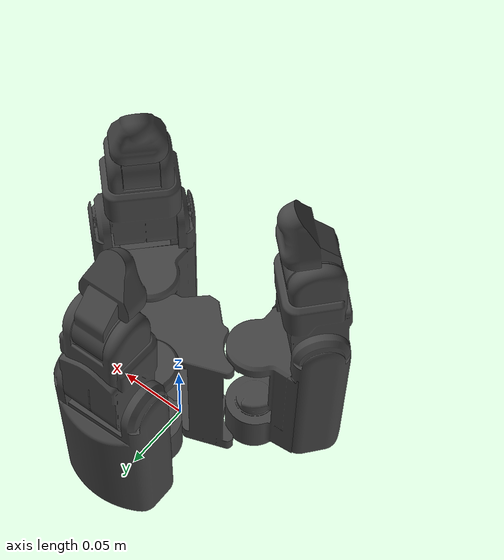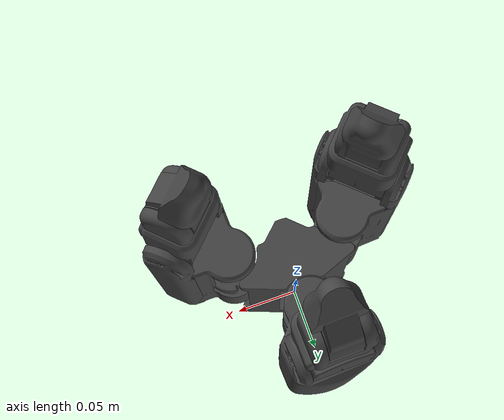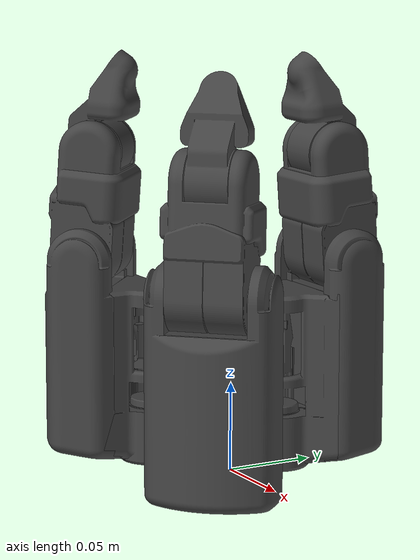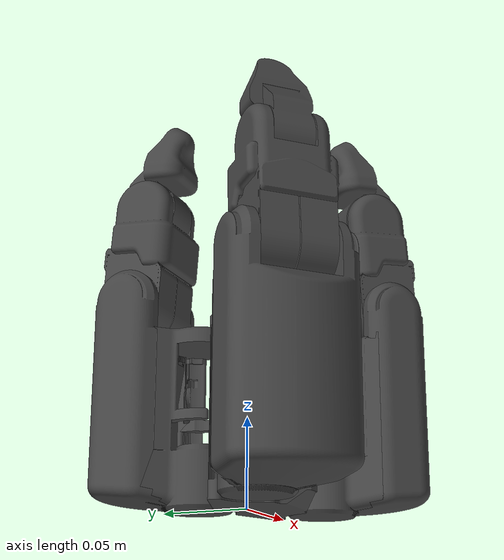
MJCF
<mujoco model="hand_H_v2">
    <include file="shared_options.xml"></include>
    <asset>
        <include file="shared_asset.xml"></include>
    </asset>
    <worldbody>
        <body name="H0_wrist_attach" pos="0 0 0">
            <inertial pos="0 0 0" mass="0" diaginertia="0 0 0" />
            <body name="H0_base_link" pos="0 0 -0.0005">
                <inertial pos="9.45256e-05 -0.00865108 0.0485" quat="0.707107 0 0 0.707107" mass="0.275316" diaginertia="0.0003223 0.000255715 0.000146273" />
                <geom type="mesh" rgba="0.267 0.267 0.267 1" mesh="palm_link_col" friction="1 0.05 0.01" condim="4" margin="0.0005" contype="1" conaffinity="1"/>
                <body name="H0_insert_F0" pos="-0.045 -0.025981 0" quat="0.382681 0 0 0.923881">
                    <inertial pos="-0.045 -0.025981 0" quat="0.382681 0 0 0.923881" mass="0" diaginertia="0 0 0" />
                    <body name="H0_F0_palm_link" pos="0 0 0">
                        <inertial pos="-0.00681802 -0.0094702 0.067588" quat="0.992601 0.0892342 0.0144943 -0.0810556" mass="0.095" diaginertia="2.7996e-05 2.73461e-05 9.27404e-06" />
                        <body name="H0_F0_base_link" pos="0 0 0.00016528" quat="0.999937 0 0 0.0112008">
                            <inertial pos="3.29175e-05 0.0257198 0.0640745" quat="0.999447 -0.032655 0.000557149 0.0061748" mass="0.482887" diaginertia="0.000750982 0.000728478 0.00032531" />
                            <joint name="H0_F0J0" pos="0 0 0" axis="0 0 1" limited="true" range="-0.785398 0.785398" damping="0.5" armature="0.005" margin="0.01" frictionloss="0.001"/>
                            <geom type="mesh" rgba="0.267 0.267 0.267 1" mesh="finger_base_front_link" margin="0" contype="1" conaffinity="1"/>
                            <geom type="mesh" rgba="0.267 0.267 0.267 1" mesh="finger_base_back_link" contype="1" conaffinity="1" pos="0 0 0" quat="0.999937 0 0 0.0112008"/>
                            <body name="H0_F0_link_1" pos="0 0.035 0.11683" quat="0.999375 0.0353401 0 0">
                                <inertial pos="0.000425187 -0.000367262 0.0278443" quat="0.731527 -0.00311774 -0.00402921 0.681793" mass="0.152927" diaginertia="0.000123742 0.000112273 4.66523e-05" />
                                <joint name="H0_F0J1" pos="0 0 0" axis="1 0 0" limited="true" range="-1.39626 1.0472" damping="0.5" armature="0.005" margin="0.01" frictionloss="0.001"/>
                                <geom type="mesh" rgba="0.267 0.267 0.267 1" mesh="finger_prox_link_col" friction="1 0.05 0.01" condim="4" margin="0.0005" contype="1" conaffinity="1"/>
                                <body name="H0_F0_link_2" pos="0 0 0.06" quat="0.999994 -0.00343244 0 0">
                                    <inertial pos="0.000301517 -0.00291034 0.0141289" quat="0.723859 0.0821098 -0.0893603 0.679192" mass="0.0438455" diaginertia="1.61269e-05 1.59969e-05 5.28892e-06" />
                                    <joint name="H0_F0J2" pos="0 0 0" axis="1 0 0" limited="true" range="-1.0472 1.39626" damping="0.5" armature="0.005" margin="0.01" frictionloss="0.001"/>
                                    <geom type="mesh" rgba="0.267 0.267 0.267 1" mesh="finger_dist_link" friction="1 0.05 0.01" condim="4" margin="0.0005" contype="1" conaffinity="1" />
                                    <body name="H0_F0_tip" pos="0 0 0">
                                        <inertial pos="0 0 0" mass="0" diaginertia="0 0 0" />
                                        <body name="H0_F0_optoforce" pos="0 -0.006 0.046" quat="0.984727 -0.174108 0 0">
                                            <inertial pos="0 -0.006 0.046" quat="0.984727 -0.174108 0 0" mass="0" diaginertia="0 0 0" />
                                        </body>
                                    </body>
                                </body>
                            </body>
                        </body>
                    </body>
                </body>
                <body name="H0_insert_F1" pos="0 0.029019 0">
                    <inertial pos="0 0.029019 0" mass="0" diaginertia="0 0 0" />
                    <body name="H0_F1_palm_link" pos="0 0 0">
                        <inertial pos="-0.00681802 -0.0094702 0.067588" quat="0.992601 0.0892342 0.0144943 -0.0810556" mass="0.095" diaginertia="2.7996e-05 2.73461e-05 9.27404e-06" />
                        <body name="H0_F1_base_link" pos="0 0 0.00016528" quat="0.999937 0 0 0.0112008">
                            <inertial pos="3.29175e-05 0.0257198 0.0640745" quat="0.999447 -0.032655 0.000557149 0.0061748" mass="0.482887" diaginertia="0.000750982 0.000728478 0.00032531" />
                            <joint name="H0_F1J0" pos="0 0 0" axis="0 0 1" limited="true" range="-0.785398 0.785398" damping="0.5" armature="0.005" margin="0.01" frictionloss="0.001"/>
                            <geom type="mesh" rgba="0.267 0.267 0.267 1" mesh="finger_base_front_link" margin="0" contype="1" conaffinity="1"/>
                            <geom type="mesh" rgba="0.267 0.267 0.267 1" mesh="finger_base_back_link" contype="1" conaffinity="1" pos="0 0 0" quat="0.999937 0 0 0.0112008"/>
                            <body name="H0_F1_link_1" pos="0 0.035 0.11683" quat="0.999375 0.0353401 0 0">
                                <inertial pos="0.000425187 -0.000367262 0.0278443" quat="0.731527 -0.00311774 -0.00402921 0.681793" mass="0.152927" diaginertia="0.000123742 0.000112273 4.66523e-05" />
                                <joint name="H0_F1J1" pos="0 0 0" axis="1 0 0" limited="true" range="-1.39626 1.0472" damping="0.5" armature="0.005" margin="0.01" frictionloss="0.001"/>
                                <geom type="mesh" rgba="0.267 0.267 0.267 1" mesh="finger_prox_link_col" friction="1 0.05 0.01" condim="4" margin="0.0005" contype="1" conaffinity="1"/>
                                <body name="H0_F1_link_2" pos="0 0 0.06" quat="0.999994 -0.00343244 0 0">
                                    <inertial pos="0.000301517 -0.00291034 0.0141289" quat="0.723859 0.0821098 -0.0893603 0.679192" mass="0.0438455" diaginertia="1.61269e-05 1.59969e-05 5.28892e-06" />
                                    <joint name="H0_F1J2" pos="0 0 0" axis="1 0 0" limited="true" range="-1.0472 1.39626" damping="0.5" armature="0.005" margin="0.01" frictionloss="0.001"/>
                                    <geom type="mesh" rgba="0.267 0.267 0.267 1" mesh="finger_dist_link" friction="1 0.05 0.01" condim="4" margin="0.0005" contype="1" conaffinity="1"/>
                                    <body name="H0_F1_tip" pos="0 0 0">
                                        <inertial pos="0 0 0" mass="0" diaginertia="0 0 0" />
                                        <body name="H0_F1_optoforce" pos="0 -0.006 0.046" quat="0.984727 -0.174108 0 0">
                                            <inertial pos="0 -0.006 0.046" quat="0.984727 -0.174108 0 0" mass="0" diaginertia="0 0 0" />
                                        </body>
                                    </body>
                                </body>
                            </body>
                        </body>
                    </body>
                </body>
                <body name="H0_insert_F2" pos="0.045 -0.025981 0" quat="0.382681 0 0 -0.923881">
                    <inertial pos="0.045 -0.025981 0" quat="0.382681 0 0 -0.923881" mass="0" diaginertia="0 0 0" />
                    <body name="H0_F2_palm_link" pos="0 0 0">
                        <inertial pos="-0.00681802 -0.0094702 0.067588" quat="0.992601 0.0892342 0.0144943 -0.0810556" mass="0.095" diaginertia="2.7996e-05 2.73461e-05 9.27404e-06" />
                        <body name="H0_F2_base_link" pos="0 0 0.00016528" quat="0.999937 0 0 0.0112008">
                            <inertial pos="3.29175e-05 0.0257198 0.0640745" quat="0.999447 -0.032655 0.000557149 0.0061748" mass="0.482887" diaginertia="0.000750982 0.000728478 0.00032531" />
                            <joint name="H0_F2J0" pos="0 0 0" axis="0 0 1" limited="true" range="-0.785398 0.785398" damping="0.5" armature="0.005" margin="0.01" frictionloss="0.001"/>
                            <geom type="mesh" rgba="0.267 0.267 0.267 1" mesh="finger_base_front_link" margin="0" contype="1" conaffinity="1"/>
                            <geom type="mesh" rgba="0.267 0.267 0.267 1" mesh="finger_base_back_link" contype="1" conaffinity="1" pos="0 0 0" quat="0.999937 0 0 0.0112008"/>
                            <body name="H0_F2_link_1" pos="0 0.035 0.11683" quat="0.999375 0.0353401 0 0">
                                <inertial pos="0.000425187 -0.000367262 0.0278443" quat="0.731527 -0.00311774 -0.00402921 0.681793" mass="0.152927" diaginertia="0.000123742 0.000112273 4.66523e-05" />
                                <joint name="H0_F2J1" pos="0 0 0" axis="1 0 0" limited="true" range="-1.39626 1.0472" damping="0.5" armature="0.005" margin="0.01" frictionloss="0.001"/>
                                <geom type="mesh" rgba="0.267 0.267 0.267 1" mesh="finger_prox_link_col" friction="1 0.05 0.01" condim="4" margin="0.0005" contype="1" conaffinity="1"/>
                                <body name="H0_F2_link_2" pos="0 0 0.06" quat="0.999994 -0.00343244 0 0">
                                    <inertial pos="0.000301517 -0.00291034 0.0141289" quat="0.723859 0.0821098 -0.0893603 0.679192" mass="0.0438455" diaginertia="1.61269e-05 1.59969e-05 5.28892e-06" />
                                    <joint name="H0_F2J2" pos="0 0 0" axis="1 0 0" limited="true" range="-1.0472 1.39626" damping="0.5" armature="0.005" margin="0.01" frictionloss="0.001"/>
                                    <geom type="mesh" rgba="0.267 0.267 0.267 1" mesh="finger_dist_link" friction="1 0.05 0.01" condim="4" margin="0.0005" contype="1" conaffinity="1"/>
                                    <body name="H0_F2_tip" pos="0 0 0">
                                        <inertial pos="0 0 0" mass="0" diaginertia="0 0 0" />
                                        <body name="H0_F2_optoforce" pos="0 -0.006 0.046" quat="0.984727 -0.174108 0 0">
                                            <inertial pos="0 -0.006 0.046" quat="0.984727 -0.174108 0 0" mass="0" diaginertia="0 0 0" />
                                        </body>
                                    </body>
                                </body>
                            </body>
                        </body>
                    </body>
                </body>
                <body name="fh_manipulator" pos="0 0 0.1">
                    <inertial pos="0 0 0.1" mass="0" diaginertia="0 0 0" />
                </body>
            </body>
        </body>
    </worldbody>
    <keyframe>
        <key time="30" qpos="0 0 0 0 0 0 0 0 0" />
    </keyframe>
</mujoco>

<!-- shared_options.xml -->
<mujoco>
    <compiler angle="radian" inertiafromgeom="true" coordinate="local" meshdir=""></compiler>

    <visual>
        <map fogstart="3" fogend="5" force="0.1" znear="0.5"/>
        <quality shadowsize="2048" offsamples="8"/>
        <global offwidth="800" offheight="800"/>
    </visual>

    <option cone="elliptic" impratio="300" timestep="0.002"/>
    <size njmax="500" nconmax="200" />
</mujoco>

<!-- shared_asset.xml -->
<mujoco>
    <texture type="skybox" builtin="gradient" width="128" height="128" rgb1=".4 .6 .8"
        rgb2="0 0 0"/>
    <texture name="texgeom" type="cube" builtin="flat" mark="cross" width="127" height="1278"
        rgb1="0.8 0.6 0.4" rgb2="0.8 0.6 0.4" markrgb="1 1 1" random="0.01"/>
    <texture name="texplane" type="2d" builtin="checker" rgb1=".2 .3 .4" rgb2=".1 0.15 0.2"
        width="512" height="512"/>
    <material name='mat_plane' reflectance='0.3' texture="texplane" texrepeat="1 1" texuniform="true"/>
    <material name="block_mat" specular="0" shininess="0.5" reflectance="0" rgba="0.2 0.2 0.2 1"></material>
    <material name='geom' texture="texgeom" texuniform="true"/>
    <mesh name="base" file="meshes/arm_and_hand_meshes/base.stl" />
    <mesh name="shoulder" file="meshes/arm_and_hand_meshes/shoulder.stl" />
    <mesh name="upperarm_body_link" file="meshes/arm_and_hand_meshes/upperarm_body.stl" />
    <mesh name="upperarm_bottom_link" file="meshes/arm_and_hand_meshes/upperarm_bottom_link.stl" />
    <mesh name="upperarm_top_link" file="meshes/arm_and_hand_meshes/upperarm_top_link.stl" />
    <mesh name="forearm_body_link" file="meshes/arm_and_hand_meshes/forearm_body_link.stl" />
    <mesh name="forearm_bottom_link" file="meshes/arm_and_hand_meshes/forearm_bottom_link.stl" />
    <mesh name="forearm_top_link" file="meshes/arm_and_hand_meshes/forearm_top_link.stl" />
    <mesh name="wrist1_link" file="meshes/arm_and_hand_meshes/wrist1_link.stl" />
    <mesh name="wrist1_base" file="meshes/arm_and_hand_meshes/wrist1_base.stl" />
    <mesh name="wrist2_link" file="meshes/arm_and_hand_meshes/wrist2_link.stl" />
    <mesh name="wrist2_base" file="meshes/arm_and_hand_meshes/wrist2_base.stl" />
    <mesh name="wrist3" file="meshes/arm_and_hand_meshes/wrist3.stl" />
    <mesh name="mount_link_50_4_M6_col" file="meshes/arm_and_hand_meshes/mount_link_50_4_M6.stl" />
    <mesh name="palm_link_col" file="meshes/arm_and_hand_meshes/palm_link.stl" />
    <mesh name="finger_base_back_link" file="meshes/arm_and_hand_meshes/finger_base_back_link.stl" />
    <mesh name="finger_base_front_link" file="meshes/arm_and_hand_meshes/finger_base_front_link.stl" />
    <mesh name="finger_prox_link_col" file="meshes/arm_and_hand_meshes/finger_prox_link.stl" />
    <mesh name="finger_dist_link" file="meshes/arm_and_hand_meshes/finger_dist_link.stl" />
</mujoco>
